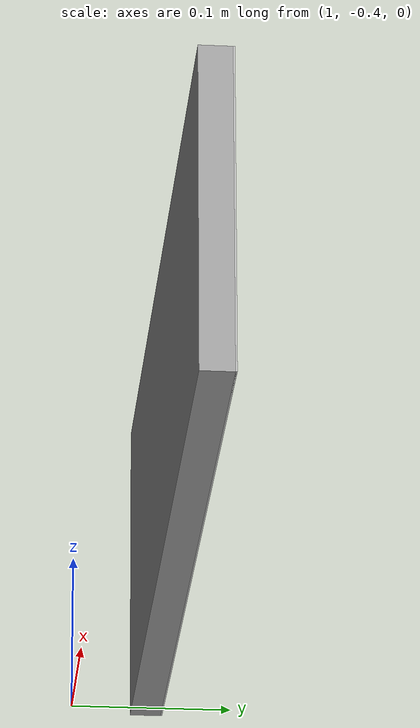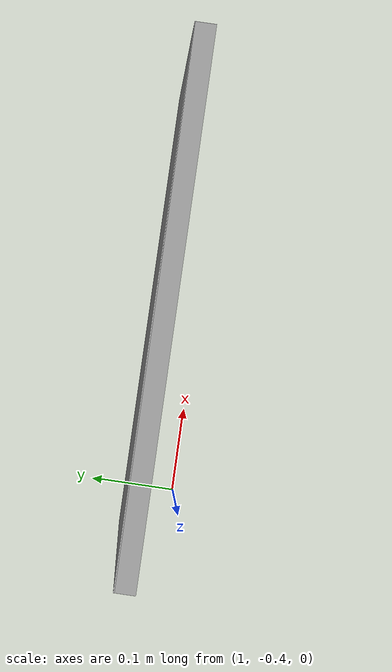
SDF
<?xml version='1.0'?>
<sdf version='1.7'>
  <model name='1'>
    <static>true</static>

    <pose>1.218006 -0.350521 0.109580 0 0 -1.57106</pose>

    <link name='link_0'>
      <pose>0 0 0 0 0 0</pose>

      <visual name='visual'>
        <geometry>
          <box>
            <size>0.019959 0.522549 0.197075</size>
          </box>
        </geometry>
        <material>
          <script>
            <uri>file://media/materials/scripts/gazebo.material</uri>
            <name>Gazebo/Grey</name>
          </script>
        </material>
      </visual>

      <visual name='signboard_visual'>
        <pose>-0.01 0 0 0 0 0</pose>
        <geometry>
          <box>
            <size>0.001 0.522549 0.197075</size>
          </box>
        </geometry>
        <material>
          <script>
            <uri>model://1/materials/scripts</uri>
            <uri>model://1/materials/textures</uri>
            <name>Model_1/Texture</name>
          </script>
        </material>
      </visual>
    </link>
    <allow_auto_disable>1</allow_auto_disable>
  </model>
</sdf>
